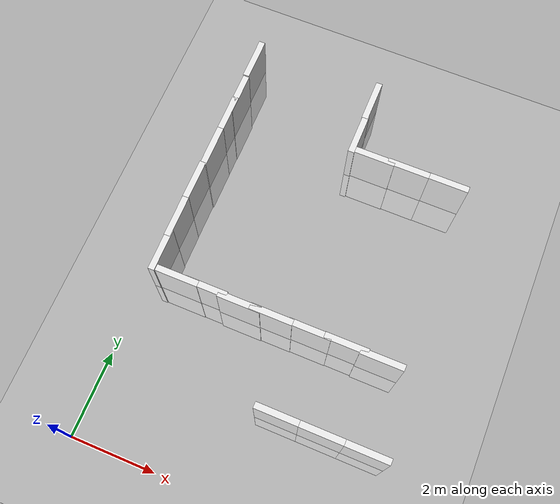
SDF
<sdf version="1.6">
 <world name="default">
  <model name="ground_plane">
   <static>1</static>
   <link name="link">
    <collision name="collision">
     <geometry><plane><normal>0 0 1</normal><size>100 100</size></plane></geometry>
     <surface><friction><ode><mu>100</mu><mu2>50</mu2></ode></friction></surface>
    </collision>
    <visual name="visual">
     <cast_shadows>0</cast_shadows>
     <geometry><plane><normal>0 0 1</normal><size>100 100</size></plane></geometry>
     <material>
      <script><uri>file://media/materials/scripts/gazebo.material</uri><name>Gazebo/Grey</name></script>
     </material>
    </visual>
   </link>
  </model>
  <model name="wall_left_04">
   <link name="Wall_10">
    <inertial>
     <mass>1</mass>
     <inertia><ixx>1</ixx><ixy>0</ixy><ixz>0</ixz><iyy>1</iyy><iyz>0</iyz><izz>1</izz></inertia>
    </inertial>
    <visual name="Wall_10_Visual_0">
     <geometry><box><size>1 0.15 2.5</size></box></geometry>
     <material>
      <script>
       <uri>model://wall/materials/scripts</uri>
       <uri>model://wall/materials/textures</uri>
       <name>wall_white</name>
      </script>
      <shader type="pixel"><normal_map>__default__</normal_map></shader>
      <ambient>1 1 1 1</ambient>
      <diffuse>1 1 1 1</diffuse>
      <specular>0 0 0 1</specular>
      <emissive>0 0 0 1</emissive>
     </material>
     <meta><layer>0</layer></meta>
    </visual>
    <collision name="Wall_10_Collision_0">
     <geometry><box><size>1 0.15 2.5</size></box></geometry>
     <surface>
      <friction>
       <ode><mu>1</mu><mu2>1</mu2><fdir1>0 0 0</fdir1><slip1>0</slip1><slip2>0</slip2></ode>
       <torsional>
        <coefficient>1</coefficient>
        <patch_radius>0</patch_radius>
        <surface_radius>0</surface_radius>
        <use_patch_radius>1</use_patch_radius>
        <ode><slip>0</slip></ode>
       </torsional>
      </friction>
      <bounce><restitution_coefficient>0</restitution_coefficient><threshold>1e+06</threshold></bounce>
      <contact>
       <collide_without_contact>0</collide_without_contact>
       <collide_without_contact_bitmask>1</collide_without_contact_bitmask>
       <collide_bitmask>1</collide_bitmask>
       <ode>
        <soft_cfm>0</soft_cfm>
        <soft_erp>0.2</soft_erp>
        <kp>1e+13</kp>
        <kd>1</kd>
        <max_vel>0.01</max_vel>
        <min_depth>0</min_depth>
       </ode>
       <bullet>
        <split_impulse>1</split_impulse>
        <split_impulse_penetration_threshold>-0.01</split_impulse_penetration_threshold>
        <soft_cfm>0</soft_cfm>
        <soft_erp>0.2</soft_erp>
        <kp>1e+13</kp>
        <kd>1</kd>
       </bullet>
      </contact>
     </surface>
    </collision>
   </link>
   <static>1</static>
   <pose>4 2 0 0 -0 0</pose>
  </model>
  <model name="wall_left_05">
   <link name="Wall_10">
    <inertial>
     <mass>1</mass>
     <inertia><ixx>1</ixx><ixy>0</ixy><ixz>0</ixz><iyy>1</iyy><iyz>0</iyz><izz>1</izz></inertia>
    </inertial>
    <visual name="Wall_10_Visual_0">
     <geometry><box><size>1 0.15 2.5</size></box></geometry>
     <material>
      <script>
       <uri>model://wall/materials/scripts</uri>
       <uri>model://wall/materials/textures</uri>
       <name>wall_white</name>
      </script>
      <shader type="pixel"><normal_map>__default__</normal_map></shader>
      <ambient>1 1 1 1</ambient>
      <diffuse>1 1 1 1</diffuse>
      <specular>0 0 0 1</specular>
      <emissive>0 0 0 1</emissive>
     </material>
     <meta><layer>0</layer></meta>
    </visual>
    <collision name="Wall_10_Collision_0">
     <geometry><box><size>1 0.15 2.5</size></box></geometry>
     <surface>
      <friction>
       <ode><mu>1</mu><mu2>1</mu2><fdir1>0 0 0</fdir1><slip1>0</slip1><slip2>0</slip2></ode>
       <torsional>
        <coefficient>1</coefficient>
        <patch_radius>0</patch_radius>
        <surface_radius>0</surface_radius>
        <use_patch_radius>1</use_patch_radius>
        <ode><slip>0</slip></ode>
       </torsional>
      </friction>
      <bounce><restitution_coefficient>0</restitution_coefficient><threshold>1e+06</threshold></bounce>
      <contact>
       <collide_without_contact>0</collide_without_contact>
       <collide_without_contact_bitmask>1</collide_without_contact_bitmask>
       <collide_bitmask>1</collide_bitmask>
       <ode>
        <soft_cfm>0</soft_cfm>
        <soft_erp>0.2</soft_erp>
        <kp>1e+13</kp>
        <kd>1</kd>
        <max_vel>0.01</max_vel>
        <min_depth>0</min_depth>
       </ode>
       <bullet>
        <split_impulse>1</split_impulse>
        <split_impulse_penetration_threshold>-0.01</split_impulse_penetration_threshold>
        <soft_cfm>0</soft_cfm>
        <soft_erp>0.2</soft_erp>
        <kp>1e+13</kp>
        <kd>1</kd>
       </bullet>
      </contact>
     </surface>
    </collision>
   </link>
   <static>1</static>
   <pose>5 2 0 0 -0 0</pose>
  </model>
  <model name="wall_left_06">
   <link name="Wall_10">
    <inertial>
     <mass>1</mass>
     <inertia><ixx>1</ixx><ixy>0</ixy><ixz>0</ixz><iyy>1</iyy><iyz>0</iyz><izz>1</izz></inertia>
    </inertial>
    <visual name="Wall_10_Visual_0">
     <geometry><box><size>1 0.15 2.5</size></box></geometry>
     <material>
      <script>
       <uri>model://wall/materials/scripts</uri>
       <uri>model://wall/materials/textures</uri>
       <name>wall_white</name>
      </script>
      <shader type="pixel"><normal_map>__default__</normal_map></shader>
      <ambient>1 1 1 1</ambient>
      <diffuse>1 1 1 1</diffuse>
      <specular>0 0 0 1</specular>
      <emissive>0 0 0 1</emissive>
     </material>
     <meta><layer>0</layer></meta>
    </visual>
    <collision name="Wall_10_Collision_0">
     <geometry><box><size>1 0.15 2.5</size></box></geometry>
     <surface>
      <friction>
       <ode><mu>1</mu><mu2>1</mu2><fdir1>0 0 0</fdir1><slip1>0</slip1><slip2>0</slip2></ode>
       <torsional>
        <coefficient>1</coefficient>
        <patch_radius>0</patch_radius>
        <surface_radius>0</surface_radius>
        <use_patch_radius>1</use_patch_radius>
        <ode><slip>0</slip></ode>
       </torsional>
      </friction>
      <bounce><restitution_coefficient>0</restitution_coefficient><threshold>1e+06</threshold></bounce>
      <contact>
       <collide_without_contact>0</collide_without_contact>
       <collide_without_contact_bitmask>1</collide_without_contact_bitmask>
       <collide_bitmask>1</collide_bitmask>
       <ode>
        <soft_cfm>0</soft_cfm>
        <soft_erp>0.2</soft_erp>
        <kp>1e+13</kp>
        <kd>1</kd>
        <max_vel>0.01</max_vel>
        <min_depth>0</min_depth>
       </ode>
       <bullet>
        <split_impulse>1</split_impulse>
        <split_impulse_penetration_threshold>-0.01</split_impulse_penetration_threshold>
        <soft_cfm>0</soft_cfm>
        <soft_erp>0.2</soft_erp>
        <kp>1e+13</kp>
        <kd>1</kd>
       </bullet>
      </contact>
     </surface>
    </collision>
   </link>
   <static>1</static>
   <pose>6 2 0 0 -0 0</pose>
  </model>
  <model name="wall_right_13_clone_clone_2">
   <link name="Wall_10">
    <inertial>
     <mass>1</mass>
     <inertia><ixx>1</ixx><ixy>0</ixy><ixz>0</ixz><iyy>1</iyy><iyz>0</iyz><izz>1</izz></inertia>
    </inertial>
    <visual name="Wall_10_Visual_0">
     <geometry><box><size>1 0.15 2.5</size></box></geometry>
     <material>
      <script>
       <uri>model://wall/materials/scripts</uri>
       <uri>model://wall/materials/textures</uri>
       <name>wall_white</name>
      </script>
      <shader type="pixel"><normal_map>__default__</normal_map></shader>
      <ambient>1 1 1 1</ambient>
      <diffuse>1 1 1 1</diffuse>
      <specular>0 0 0 1</specular>
      <emissive>0 0 0 1</emissive>
     </material>
     <meta><layer>0</layer></meta>
    </visual>
    <collision name="Wall_10_Collision_0">
     <geometry><box><size>1 0.15 2.5</size></box></geometry>
     <surface>
      <friction>
       <ode><mu>1</mu><mu2>1</mu2><fdir1>0 0 0</fdir1><slip1>0</slip1><slip2>0</slip2></ode>
       <torsional>
        <coefficient>1</coefficient>
        <patch_radius>0</patch_radius>
        <surface_radius>0</surface_radius>
        <use_patch_radius>1</use_patch_radius>
        <ode><slip>0</slip></ode>
       </torsional>
      </friction>
      <bounce><restitution_coefficient>0</restitution_coefficient><threshold>1e+06</threshold></bounce>
      <contact>
       <collide_without_contact>0</collide_without_contact>
       <collide_without_contact_bitmask>1</collide_without_contact_bitmask>
       <collide_bitmask>1</collide_bitmask>
       <ode>
        <soft_cfm>0</soft_cfm>
        <soft_erp>0.2</soft_erp>
        <kp>1e+13</kp>
        <kd>1</kd>
        <max_vel>0.01</max_vel>
        <min_depth>0</min_depth>
       </ode>
       <bullet>
        <split_impulse>1</split_impulse>
        <split_impulse_penetration_threshold>-0.01</split_impulse_penetration_threshold>
        <soft_cfm>0</soft_cfm>
        <soft_erp>0.2</soft_erp>
        <kp>1e+13</kp>
        <kd>1</kd>
       </bullet>
      </contact>
     </surface>
    </collision>
   </link>
   <static>1</static>
   <pose>5.61571 3.90145 0 0 -0 0</pose>
  </model>
  <model name="wall_right_13_clone_clone_3">
   <link name="Wall_10">
    <inertial>
     <mass>1</mass>
     <inertia><ixx>1</ixx><ixy>0</ixy><ixz>0</ixz><iyy>1</iyy><iyz>0</iyz><izz>1</izz></inertia>
    </inertial>
    <visual name="Wall_10_Visual_0">
     <geometry><box><size>1 0.15 2.5</size></box></geometry>
     <material>
      <script>
       <uri>model://wall/materials/scripts</uri>
       <uri>model://wall/materials/textures</uri>
       <name>wall_white</name>
      </script>
      <shader type="pixel"><normal_map>__default__</normal_map></shader>
      <ambient>1 1 1 1</ambient>
      <diffuse>1 1 1 1</diffuse>
      <specular>0 0 0 1</specular>
      <emissive>0 0 0 1</emissive>
     </material>
     <meta><layer>0</layer></meta>
    </visual>
    <collision name="Wall_10_Collision_0">
     <geometry><box><size>1 0.15 2.5</size></box></geometry>
     <surface>
      <friction>
       <ode><mu>1</mu><mu2>1</mu2><fdir1>0 0 0</fdir1><slip1>0</slip1><slip2>0</slip2></ode>
       <torsional>
        <coefficient>1</coefficient>
        <patch_radius>0</patch_radius>
        <surface_radius>0</surface_radius>
        <use_patch_radius>1</use_patch_radius>
        <ode><slip>0</slip></ode>
       </torsional>
      </friction>
      <bounce><restitution_coefficient>0</restitution_coefficient><threshold>1e+06</threshold></bounce>
      <contact>
       <collide_without_contact>0</collide_without_contact>
       <collide_without_contact_bitmask>1</collide_without_contact_bitmask>
       <collide_bitmask>1</collide_bitmask>
       <ode>
        <soft_cfm>0</soft_cfm>
        <soft_erp>0.2</soft_erp>
        <kp>1e+13</kp>
        <kd>1</kd>
        <max_vel>0.01</max_vel>
        <min_depth>0</min_depth>
       </ode>
       <bullet>
        <split_impulse>1</split_impulse>
        <split_impulse_penetration_threshold>-0.01</split_impulse_penetration_threshold>
        <soft_cfm>0</soft_cfm>
        <soft_erp>0.2</soft_erp>
        <kp>1e+13</kp>
        <kd>1</kd>
       </bullet>
      </contact>
     </surface>
    </collision>
   </link>
   <static>1</static>
   <pose>4.79569 3.92621 0 0 -0 0</pose>
  </model>
  <model name="wall_right_13_clone_clone_14_clone_2">
   <link name="Wall_10">
    <inertial>
     <mass>1</mass>
     <inertia><ixx>1</ixx><ixy>0</ixy><ixz>0</ixz><iyy>1</iyy><iyz>0</iyz><izz>1</izz></inertia>
    </inertial>
    <visual name="Wall_10_Visual_0">
     <geometry><box><size>1 0.15 2.5</size></box></geometry>
     <material>
      <script>
       <uri>model://wall/materials/scripts</uri>
       <uri>model://wall/materials/textures</uri>
       <name>wall_white</name>
      </script>
      <shader type="pixel"><normal_map>__default__</normal_map></shader>
      <ambient>1 1 1 1</ambient>
      <diffuse>1 1 1 1</diffuse>
      <specular>0 0 0 1</specular>
      <emissive>0 0 0 1</emissive>
     </material>
     <meta><layer>0</layer></meta>
    </visual>
    <collision name="Wall_10_Collision_0">
     <geometry><box><size>1 0.15 2.5</size></box></geometry>
     <surface>
      <friction>
       <ode><mu>1</mu><mu2>1</mu2><fdir1>0 0 0</fdir1><slip1>0</slip1><slip2>0</slip2></ode>
       <torsional>
        <coefficient>1</coefficient>
        <patch_radius>0</patch_radius>
        <surface_radius>0</surface_radius>
        <use_patch_radius>1</use_patch_radius>
        <ode><slip>0</slip></ode>
       </torsional>
      </friction>
      <bounce><restitution_coefficient>0</restitution_coefficient><threshold>1e+06</threshold></bounce>
      <contact>
       <collide_without_contact>0</collide_without_contact>
       <collide_without_contact_bitmask>1</collide_without_contact_bitmask>
       <collide_bitmask>1</collide_bitmask>
       <ode>
        <soft_cfm>0</soft_cfm>
        <soft_erp>0.2</soft_erp>
        <kp>1e+13</kp>
        <kd>1</kd>
        <max_vel>0.01</max_vel>
        <min_depth>0</min_depth>
       </ode>
       <bullet>
        <split_impulse>1</split_impulse>
        <split_impulse_penetration_threshold>-0.01</split_impulse_penetration_threshold>
        <soft_cfm>0</soft_cfm>
        <soft_erp>0.2</soft_erp>
        <kp>1e+13</kp>
        <kd>1</kd>
       </bullet>
      </contact>
     </surface>
    </collision>
   </link>
   <static>1</static>
   <pose>3.96574 3.91717 0 0 -0 0</pose>
  </model>
  <model name="wall_right_13_clone_clone_14_clone_3">
   <link name="Wall_10">
    <inertial>
     <mass>1</mass>
     <inertia><ixx>1</ixx><ixy>0</ixy><ixz>0</ixz><iyy>1</iyy><iyz>0</iyz><izz>1</izz></inertia>
    </inertial>
    <visual name="Wall_10_Visual_0">
     <geometry><box><size>1 0.15 2.5</size></box></geometry>
     <material>
      <script>
       <uri>model://wall/materials/scripts</uri>
       <uri>model://wall/materials/textures</uri>
       <name>wall_white</name>
      </script>
      <shader type="pixel"><normal_map>__default__</normal_map></shader>
      <ambient>1 1 1 1</ambient>
      <diffuse>1 1 1 1</diffuse>
      <specular>0 0 0 1</specular>
      <emissive>0 0 0 1</emissive>
     </material>
     <meta><layer>0</layer></meta>
    </visual>
    <collision name="Wall_10_Collision_0">
     <geometry><box><size>1 0.15 2.5</size></box></geometry>
     <surface>
      <friction>
       <ode><mu>1</mu><mu2>1</mu2><fdir1>0 0 0</fdir1><slip1>0</slip1><slip2>0</slip2></ode>
       <torsional>
        <coefficient>1</coefficient>
        <patch_radius>0</patch_radius>
        <surface_radius>0</surface_radius>
        <use_patch_radius>1</use_patch_radius>
        <ode><slip>0</slip></ode>
       </torsional>
      </friction>
      <bounce><restitution_coefficient>0</restitution_coefficient><threshold>1e+06</threshold></bounce>
      <contact>
       <collide_without_contact>0</collide_without_contact>
       <collide_without_contact_bitmask>1</collide_without_contact_bitmask>
       <collide_bitmask>1</collide_bitmask>
       <ode>
        <soft_cfm>0</soft_cfm>
        <soft_erp>0.2</soft_erp>
        <kp>1e+13</kp>
        <kd>1</kd>
        <max_vel>0.01</max_vel>
        <min_depth>0</min_depth>
       </ode>
       <bullet>
        <split_impulse>1</split_impulse>
        <split_impulse_penetration_threshold>-0.01</split_impulse_penetration_threshold>
        <soft_cfm>0</soft_cfm>
        <soft_erp>0.2</soft_erp>
        <kp>1e+13</kp>
        <kd>1</kd>
       </bullet>
      </contact>
     </surface>
    </collision>
   </link>
   <static>1</static>
   <pose>3.0833 3.908 0 0 -0 0</pose>
  </model>
  <model name="wall_right_13_clone_clone_14_clone_4">
   <link name="Wall_10">
    <inertial>
     <mass>1</mass>
     <inertia><ixx>1</ixx><ixy>0</ixy><ixz>0</ixz><iyy>1</iyy><iyz>0</iyz><izz>1</izz></inertia>
    </inertial>
    <visual name="Wall_10_Visual_0">
     <geometry><box><size>1 0.15 2.5</size></box></geometry>
     <material>
      <script>
       <uri>model://wall/materials/scripts</uri>
       <uri>model://wall/materials/textures</uri>
       <name>wall_white</name>
      </script>
      <shader type="pixel"><normal_map>__default__</normal_map></shader>
      <ambient>1 1 1 1</ambient>
      <diffuse>1 1 1 1</diffuse>
      <specular>0 0 0 1</specular>
      <emissive>0 0 0 1</emissive>
     </material>
     <meta><layer>0</layer></meta>
    </visual>
    <collision name="Wall_10_Collision_0">
     <geometry><box><size>1 0.15 2.5</size></box></geometry>
     <surface>
      <friction>
       <ode><mu>1</mu><mu2>1</mu2><fdir1>0 0 0</fdir1><slip1>0</slip1><slip2>0</slip2></ode>
       <torsional>
        <coefficient>1</coefficient>
        <patch_radius>0</patch_radius>
        <surface_radius>0</surface_radius>
        <use_patch_radius>1</use_patch_radius>
        <ode><slip>0</slip></ode>
       </torsional>
      </friction>
      <bounce><restitution_coefficient>0</restitution_coefficient><threshold>1e+06</threshold></bounce>
      <contact>
       <collide_without_contact>0</collide_without_contact>
       <collide_without_contact_bitmask>1</collide_without_contact_bitmask>
       <collide_bitmask>1</collide_bitmask>
       <ode>
        <soft_cfm>0</soft_cfm>
        <soft_erp>0.2</soft_erp>
        <kp>1e+13</kp>
        <kd>1</kd>
        <max_vel>0.01</max_vel>
        <min_depth>0</min_depth>
       </ode>
       <bullet>
        <split_impulse>1</split_impulse>
        <split_impulse_penetration_threshold>-0.01</split_impulse_penetration_threshold>
        <soft_cfm>0</soft_cfm>
        <soft_erp>0.2</soft_erp>
        <kp>1e+13</kp>
        <kd>1</kd>
       </bullet>
      </contact>
     </surface>
    </collision>
   </link>
   <static>1</static>
   <pose>2.33829 3.8963 0 0 -0 0</pose>
  </model>
  <model name="wall_right_13_clone_clone_14_clone_5">
   <link name="Wall_10">
    <inertial>
     <mass>1</mass>
     <inertia><ixx>1</ixx><ixy>0</ixy><ixz>0</ixz><iyy>1</iyy><iyz>0</iyz><izz>1</izz></inertia>
    </inertial>
    <visual name="Wall_10_Visual_0">
     <geometry><box><size>1 0.15 2.5</size></box></geometry>
     <material>
      <script>
       <uri>model://wall/materials/scripts</uri>
       <uri>model://wall/materials/textures</uri>
       <name>wall_white</name>
      </script>
      <shader type="pixel"><normal_map>__default__</normal_map></shader>
      <ambient>1 1 1 1</ambient>
      <diffuse>1 1 1 1</diffuse>
      <specular>0 0 0 1</specular>
      <emissive>0 0 0 1</emissive>
     </material>
     <meta><layer>0</layer></meta>
    </visual>
    <collision name="Wall_10_Collision_0">
     <geometry><box><size>1 0.15 2.5</size></box></geometry>
     <surface>
      <friction>
       <ode><mu>1</mu><mu2>1</mu2><fdir1>0 0 0</fdir1><slip1>0</slip1><slip2>0</slip2></ode>
       <torsional>
        <coefficient>1</coefficient>
        <patch_radius>0</patch_radius>
        <surface_radius>0</surface_radius>
        <use_patch_radius>1</use_patch_radius>
        <ode><slip>0</slip></ode>
       </torsional>
      </friction>
      <bounce><restitution_coefficient>0</restitution_coefficient><threshold>1e+06</threshold></bounce>
      <contact>
       <collide_without_contact>0</collide_without_contact>
       <collide_without_contact_bitmask>1</collide_without_contact_bitmask>
       <collide_bitmask>1</collide_bitmask>
       <ode>
        <soft_cfm>0</soft_cfm>
        <soft_erp>0.2</soft_erp>
        <kp>1e+13</kp>
        <kd>1</kd>
        <max_vel>0.01</max_vel>
        <min_depth>0</min_depth>
       </ode>
       <bullet>
        <split_impulse>1</split_impulse>
        <split_impulse_penetration_threshold>-0.01</split_impulse_penetration_threshold>
        <soft_cfm>0</soft_cfm>
        <soft_erp>0.2</soft_erp>
        <kp>1e+13</kp>
        <kd>1</kd>
       </bullet>
      </contact>
     </surface>
    </collision>
   </link>
   <static>1</static>
   <pose>1.53651 3.92623 0 0 -0 0</pose>
  </model>
  <model name="wall_right_13_clone_clone_14_clone_6">
   <link name="Wall_10">
    <inertial>
     <mass>1</mass>
     <inertia><ixx>1</ixx><ixy>0</ixy><ixz>0</ixz><iyy>1</iyy><iyz>0</iyz><izz>1</izz></inertia>
    </inertial>
    <visual name="Wall_10_Visual_0">
     <geometry><box><size>1 0.15 2.5</size></box></geometry>
     <material>
      <script>
       <uri>model://wall/materials/scripts</uri>
       <uri>model://wall/materials/textures</uri>
       <name>wall_white</name>
      </script>
      <shader type="pixel"><normal_map>__default__</normal_map></shader>
      <ambient>1 1 1 1</ambient>
      <diffuse>1 1 1 1</diffuse>
      <specular>0 0 0 1</specular>
      <emissive>0 0 0 1</emissive>
     </material>
     <meta><layer>0</layer></meta>
    </visual>
    <collision name="Wall_10_Collision_0">
     <geometry><box><size>1 0.15 2.5</size></box></geometry>
     <surface>
      <friction>
       <ode><mu>1</mu><mu2>1</mu2><fdir1>0 0 0</fdir1><slip1>0</slip1><slip2>0</slip2></ode>
       <torsional>
        <coefficient>1</coefficient>
        <patch_radius>0</patch_radius>
        <surface_radius>0</surface_radius>
        <use_patch_radius>1</use_patch_radius>
        <ode><slip>0</slip></ode>
       </torsional>
      </friction>
      <bounce><restitution_coefficient>0</restitution_coefficient><threshold>1e+06</threshold></bounce>
      <contact>
       <collide_without_contact>0</collide_without_contact>
       <collide_without_contact_bitmask>1</collide_without_contact_bitmask>
       <collide_bitmask>1</collide_bitmask>
       <ode>
        <soft_cfm>0</soft_cfm>
        <soft_erp>0.2</soft_erp>
        <kp>1e+13</kp>
        <kd>1</kd>
        <max_vel>0.01</max_vel>
        <min_depth>0</min_depth>
       </ode>
       <bullet>
        <split_impulse>1</split_impulse>
        <split_impulse_penetration_threshold>-0.01</split_impulse_penetration_threshold>
        <soft_cfm>0</soft_cfm>
        <soft_erp>0.2</soft_erp>
        <kp>1e+13</kp>
        <kd>1</kd>
       </bullet>
      </contact>
     </surface>
    </collision>
   </link>
   <static>1</static>
   <pose>0.859182 3.91915 0 0 -0 0</pose>
  </model>
  <model name="wall_left_07_clone">
   <link name="Wall_10">
    <inertial>
     <mass>1</mass>
     <inertia><ixx>1</ixx><ixy>0</ixy><ixz>0</ixz><iyy>1</iyy><iyz>0</iyz><izz>1</izz></inertia>
    </inertial>
    <visual name="Wall_10_Visual_0">
     <geometry><box><size>1 0.15 2.5</size></box></geometry>
     <material>
      <script>
       <uri>model://wall/materials/scripts</uri>
       <uri>model://wall/materials/textures</uri>
       <name>wall_white</name>
      </script>
      <shader type="pixel"><normal_map>__default__</normal_map></shader>
      <ambient>1 1 1 1</ambient>
      <diffuse>1 1 1 1</diffuse>
      <specular>0 0 0 1</specular>
      <emissive>0 0 0 1</emissive>
     </material>
     <meta><layer>0</layer></meta>
    </visual>
    <collision name="Wall_10_Collision_0">
     <geometry><box><size>1 0.15 2.5</size></box></geometry>
     <surface>
      <friction>
       <ode><mu>1</mu><mu2>1</mu2><fdir1>0 0 0</fdir1><slip1>0</slip1><slip2>0</slip2></ode>
       <torsional>
        <coefficient>1</coefficient>
        <patch_radius>0</patch_radius>
        <surface_radius>0</surface_radius>
        <use_patch_radius>1</use_patch_radius>
        <ode><slip>0</slip></ode>
       </torsional>
      </friction>
      <bounce><restitution_coefficient>0</restitution_coefficient><threshold>1e+06</threshold></bounce>
      <contact>
       <collide_without_contact>0</collide_without_contact>
       <collide_without_contact_bitmask>1</collide_without_contact_bitmask>
       <collide_bitmask>1</collide_bitmask>
       <ode>
        <soft_cfm>0</soft_cfm>
        <soft_erp>0.2</soft_erp>
        <kp>1e+13</kp>
        <kd>1</kd>
        <max_vel>0.01</max_vel>
        <min_depth>0</min_depth>
       </ode>
       <bullet>
        <split_impulse>1</split_impulse>
        <split_impulse_penetration_threshold>-0.01</split_impulse_penetration_threshold>
        <soft_cfm>0</soft_cfm>
        <soft_erp>0.2</soft_erp>
        <kp>1e+13</kp>
        <kd>1</kd>
       </bullet>
      </contact>
     </surface>
    </collision>
   </link>
   <static>1</static>
   <pose>0.274743 4.33014 0 0 -0 1.57</pose>
  </model>
  <model name="wall_left_07_clone_0">
   <link name="Wall_10">
    <inertial>
     <mass>1</mass>
     <inertia><ixx>1</ixx><ixy>0</ixy><ixz>0</ixz><iyy>1</iyy><iyz>0</iyz><izz>1</izz></inertia>
    </inertial>
    <visual name="Wall_10_Visual_0">
     <geometry><box><size>1 0.15 2.5</size></box></geometry>
     <material>
      <script>
       <uri>model://wall/materials/scripts</uri>
       <uri>model://wall/materials/textures</uri>
       <name>wall_white</name>
      </script>
      <shader type="pixel"><normal_map>__default__</normal_map></shader>
      <ambient>1 1 1 1</ambient>
      <diffuse>1 1 1 1</diffuse>
      <specular>0 0 0 1</specular>
      <emissive>0 0 0 1</emissive>
     </material>
     <meta><layer>0</layer></meta>
    </visual>
    <collision name="Wall_10_Collision_0">
     <geometry><box><size>1 0.15 2.5</size></box></geometry>
     <surface>
      <friction>
       <ode><mu>1</mu><mu2>1</mu2><fdir1>0 0 0</fdir1><slip1>0</slip1><slip2>0</slip2></ode>
       <torsional>
        <coefficient>1</coefficient>
        <patch_radius>0</patch_radius>
        <surface_radius>0</surface_radius>
        <use_patch_radius>1</use_patch_radius>
        <ode><slip>0</slip></ode>
       </torsional>
      </friction>
      <bounce><restitution_coefficient>0</restitution_coefficient><threshold>1e+06</threshold></bounce>
      <contact>
       <collide_without_contact>0</collide_without_contact>
       <collide_without_contact_bitmask>1</collide_without_contact_bitmask>
       <collide_bitmask>1</collide_bitmask>
       <ode>
        <soft_cfm>0</soft_cfm>
        <soft_erp>0.2</soft_erp>
        <kp>1e+13</kp>
        <kd>1</kd>
        <max_vel>0.01</max_vel>
        <min_depth>0</min_depth>
       </ode>
       <bullet>
        <split_impulse>1</split_impulse>
        <split_impulse_penetration_threshold>-0.01</split_impulse_penetration_threshold>
        <soft_cfm>0</soft_cfm>
        <soft_erp>0.2</soft_erp>
        <kp>1e+13</kp>
        <kd>1</kd>
       </bullet>
      </contact>
     </surface>
    </collision>
   </link>
   <static>1</static>
   <pose>0.262743 5.1801 0 0 -0 1.57</pose>
  </model>
  <model name="wall_left_07_clone_1">
   <link name="Wall_10">
    <inertial>
     <mass>1</mass>
     <inertia><ixx>1</ixx><ixy>0</ixy><ixz>0</ixz><iyy>1</iyy><iyz>0</iyz><izz>1</izz></inertia>
    </inertial>
    <visual name="Wall_10_Visual_0">
     <geometry><box><size>1 0.15 2.5</size></box></geometry>
     <material>
      <script>
       <uri>model://wall/materials/scripts</uri>
       <uri>model://wall/materials/textures</uri>
       <name>wall_white</name>
      </script>
      <shader type="pixel"><normal_map>__default__</normal_map></shader>
      <ambient>1 1 1 1</ambient>
      <diffuse>1 1 1 1</diffuse>
      <specular>0 0 0 1</specular>
      <emissive>0 0 0 1</emissive>
     </material>
     <meta><layer>0</layer></meta>
    </visual>
    <collision name="Wall_10_Collision_0">
     <geometry><box><size>1 0.15 2.5</size></box></geometry>
     <surface>
      <friction>
       <ode><mu>1</mu><mu2>1</mu2><fdir1>0 0 0</fdir1><slip1>0</slip1><slip2>0</slip2></ode>
       <torsional>
        <coefficient>1</coefficient>
        <patch_radius>0</patch_radius>
        <surface_radius>0</surface_radius>
        <use_patch_radius>1</use_patch_radius>
        <ode><slip>0</slip></ode>
       </torsional>
      </friction>
      <bounce><restitution_coefficient>0</restitution_coefficient><threshold>1e+06</threshold></bounce>
      <contact>
       <collide_without_contact>0</collide_without_contact>
       <collide_without_contact_bitmask>1</collide_without_contact_bitmask>
       <collide_bitmask>1</collide_bitmask>
       <ode>
        <soft_cfm>0</soft_cfm>
        <soft_erp>0.2</soft_erp>
        <kp>1e+13</kp>
        <kd>1</kd>
        <max_vel>0.01</max_vel>
        <min_depth>0</min_depth>
       </ode>
       <bullet>
        <split_impulse>1</split_impulse>
        <split_impulse_penetration_threshold>-0.01</split_impulse_penetration_threshold>
        <soft_cfm>0</soft_cfm>
        <soft_erp>0.2</soft_erp>
        <kp>1e+13</kp>
        <kd>1</kd>
       </bullet>
      </contact>
     </surface>
    </collision>
   </link>
   <static>1</static>
   <pose>0.258175 6.12071 0 0 -0 1.57</pose>
  </model>
  <model name="wall_left_07_clone_2">
   <link name="Wall_10">
    <inertial>
     <mass>1</mass>
     <inertia><ixx>1</ixx><ixy>0</ixy><ixz>0</ixz><iyy>1</iyy><iyz>0</iyz><izz>1</izz></inertia>
    </inertial>
    <visual name="Wall_10_Visual_0">
     <geometry><box><size>1 0.15 2.5</size></box></geometry>
     <material>
      <script>
       <uri>model://wall/materials/scripts</uri>
       <uri>model://wall/materials/textures</uri>
       <name>wall_white</name>
      </script>
      <shader type="pixel"><normal_map>__default__</normal_map></shader>
      <ambient>1 1 1 1</ambient>
      <diffuse>1 1 1 1</diffuse>
      <specular>0 0 0 1</specular>
      <emissive>0 0 0 1</emissive>
     </material>
     <meta><layer>0</layer></meta>
    </visual>
    <collision name="Wall_10_Collision_0">
     <geometry><box><size>1 0.15 2.5</size></box></geometry>
     <surface>
      <friction>
       <ode><mu>1</mu><mu2>1</mu2><fdir1>0 0 0</fdir1><slip1>0</slip1><slip2>0</slip2></ode>
       <torsional>
        <coefficient>1</coefficient>
        <patch_radius>0</patch_radius>
        <surface_radius>0</surface_radius>
        <use_patch_radius>1</use_patch_radius>
        <ode><slip>0</slip></ode>
       </torsional>
      </friction>
      <bounce><restitution_coefficient>0</restitution_coefficient><threshold>1e+06</threshold></bounce>
      <contact>
       <collide_without_contact>0</collide_without_contact>
       <collide_without_contact_bitmask>1</collide_without_contact_bitmask>
       <collide_bitmask>1</collide_bitmask>
       <ode>
        <soft_cfm>0</soft_cfm>
        <soft_erp>0.2</soft_erp>
        <kp>1e+13</kp>
        <kd>1</kd>
        <max_vel>0.01</max_vel>
        <min_depth>0</min_depth>
       </ode>
       <bullet>
        <split_impulse>1</split_impulse>
        <split_impulse_penetration_threshold>-0.01</split_impulse_penetration_threshold>
        <soft_cfm>0</soft_cfm>
        <soft_erp>0.2</soft_erp>
        <kp>1e+13</kp>
        <kd>1</kd>
       </bullet>
      </contact>
     </surface>
    </collision>
   </link>
   <static>1</static>
   <pose>0.278521 7.07563 0 0 -0 1.57</pose>
  </model>
  <model name="wall_left_07_clone_3">
   <link name="Wall_10">
    <inertial>
     <mass>1</mass>
     <inertia><ixx>1</ixx><ixy>0</ixy><ixz>0</ixz><iyy>1</iyy><iyz>0</iyz><izz>1</izz></inertia>
    </inertial>
    <visual name="Wall_10_Visual_0">
     <geometry><box><size>1 0.15 2.5</size></box></geometry>
     <material>
      <script>
       <uri>model://wall/materials/scripts</uri>
       <uri>model://wall/materials/textures</uri>
       <name>wall_white</name>
      </script>
      <shader type="pixel"><normal_map>__default__</normal_map></shader>
      <ambient>1 1 1 1</ambient>
      <diffuse>1 1 1 1</diffuse>
      <specular>0 0 0 1</specular>
      <emissive>0 0 0 1</emissive>
     </material>
     <meta><layer>0</layer></meta>
    </visual>
    <collision name="Wall_10_Collision_0">
     <geometry><box><size>1 0.15 2.5</size></box></geometry>
     <surface>
      <friction>
       <ode><mu>1</mu><mu2>1</mu2><fdir1>0 0 0</fdir1><slip1>0</slip1><slip2>0</slip2></ode>
       <torsional>
        <coefficient>1</coefficient>
        <patch_radius>0</patch_radius>
        <surface_radius>0</surface_radius>
        <use_patch_radius>1</use_patch_radius>
        <ode><slip>0</slip></ode>
       </torsional>
      </friction>
      <bounce><restitution_coefficient>0</restitution_coefficient><threshold>1e+06</threshold></bounce>
      <contact>
       <collide_without_contact>0</collide_without_contact>
       <collide_without_contact_bitmask>1</collide_without_contact_bitmask>
       <collide_bitmask>1</collide_bitmask>
       <ode>
        <soft_cfm>0</soft_cfm>
        <soft_erp>0.2</soft_erp>
        <kp>1e+13</kp>
        <kd>1</kd>
        <max_vel>0.01</max_vel>
        <min_depth>0</min_depth>
       </ode>
       <bullet>
        <split_impulse>1</split_impulse>
        <split_impulse_penetration_threshold>-0.01</split_impulse_penetration_threshold>
        <soft_cfm>0</soft_cfm>
        <soft_erp>0.2</soft_erp>
        <kp>1e+13</kp>
        <kd>1</kd>
       </bullet>
      </contact>
     </surface>
    </collision>
   </link>
   <static>1</static>
   <pose>0.277857 7.952 0 0 -0 1.57</pose>
  </model>
  <model name="wall_right_13_clone_clone_9_clone_7">
   <link name="Wall_10">
    <inertial>
     <mass>1</mass>
     <inertia><ixx>1</ixx><ixy>0</ixy><ixz>0</ixz><iyy>1</iyy><iyz>0</iyz><izz>1</izz></inertia>
    </inertial>
    <visual name="Wall_10_Visual_0">
     <geometry><box><size>1 0.15 2.5</size></box></geometry>
     <material>
      <script>
       <uri>model://wall/materials/scripts</uri>
       <uri>model://wall/materials/textures</uri>
       <name>wall_white</name>
      </script>
      <shader type="pixel"><normal_map>__default__</normal_map></shader>
      <ambient>1 1 1 1</ambient>
      <diffuse>1 1 1 1</diffuse>
      <specular>0 0 0 1</specular>
      <emissive>0 0 0 1</emissive>
     </material>
     <meta><layer>0</layer></meta>
    </visual>
    <collision name="Wall_10_Collision_0">
     <geometry><box><size>1 0.15 2.5</size></box></geometry>
     <surface>
      <friction>
       <ode><mu>1</mu><mu2>1</mu2><fdir1>0 0 0</fdir1><slip1>0</slip1><slip2>0</slip2></ode>
       <torsional>
        <coefficient>1</coefficient>
        <patch_radius>0</patch_radius>
        <surface_radius>0</surface_radius>
        <use_patch_radius>1</use_patch_radius>
        <ode><slip>0</slip></ode>
       </torsional>
      </friction>
      <bounce><restitution_coefficient>0</restitution_coefficient><threshold>1e+06</threshold></bounce>
      <contact>
       <collide_without_contact>0</collide_without_contact>
       <collide_without_contact_bitmask>1</collide_without_contact_bitmask>
       <collide_bitmask>1</collide_bitmask>
       <ode>
        <soft_cfm>0</soft_cfm>
        <soft_erp>0.2</soft_erp>
        <kp>1e+13</kp>
        <kd>1</kd>
        <max_vel>0.01</max_vel>
        <min_depth>0</min_depth>
       </ode>
       <bullet>
        <split_impulse>1</split_impulse>
        <split_impulse_penetration_threshold>-0.01</split_impulse_penetration_threshold>
        <soft_cfm>0</soft_cfm>
        <soft_erp>0.2</soft_erp>
        <kp>1e+13</kp>
        <kd>1</kd>
       </bullet>
      </contact>
     </surface>
    </collision>
   </link>
   <static>1</static>
   <pose>5.58364 8.28159 0 0 -0 0</pose>
  </model>
  <model name="wall_right_13_clone_clone_9_clone_8">
   <link name="Wall_10">
    <inertial>
     <mass>1</mass>
     <inertia><ixx>1</ixx><ixy>0</ixy><ixz>0</ixz><iyy>1</iyy><iyz>0</iyz><izz>1</izz></inertia>
    </inertial>
    <visual name="Wall_10_Visual_0">
     <geometry><box><size>1 0.15 2.5</size></box></geometry>
     <material>
      <script>
       <uri>model://wall/materials/scripts</uri>
       <uri>model://wall/materials/textures</uri>
       <name>wall_white</name>
      </script>
      <shader type="pixel"><normal_map>__default__</normal_map></shader>
      <ambient>1 1 1 1</ambient>
      <diffuse>1 1 1 1</diffuse>
      <specular>0 0 0 1</specular>
      <emissive>0 0 0 1</emissive>
     </material>
     <meta><layer>0</layer></meta>
    </visual>
    <collision name="Wall_10_Collision_0">
     <geometry><box><size>1 0.15 2.5</size></box></geometry>
     <surface>
      <friction>
       <ode><mu>1</mu><mu2>1</mu2><fdir1>0 0 0</fdir1><slip1>0</slip1><slip2>0</slip2></ode>
       <torsional>
        <coefficient>1</coefficient>
        <patch_radius>0</patch_radius>
        <surface_radius>0</surface_radius>
        <use_patch_radius>1</use_patch_radius>
        <ode><slip>0</slip></ode>
       </torsional>
      </friction>
      <bounce><restitution_coefficient>0</restitution_coefficient><threshold>1e+06</threshold></bounce>
      <contact>
       <collide_without_contact>0</collide_without_contact>
       <collide_without_contact_bitmask>1</collide_without_contact_bitmask>
       <collide_bitmask>1</collide_bitmask>
       <ode>
        <soft_cfm>0</soft_cfm>
        <soft_erp>0.2</soft_erp>
        <kp>1e+13</kp>
        <kd>1</kd>
        <max_vel>0.01</max_vel>
        <min_depth>0</min_depth>
       </ode>
       <bullet>
        <split_impulse>1</split_impulse>
        <split_impulse_penetration_threshold>-0.01</split_impulse_penetration_threshold>
        <soft_cfm>0</soft_cfm>
        <soft_erp>0.2</soft_erp>
        <kp>1e+13</kp>
        <kd>1</kd>
       </bullet>
      </contact>
     </surface>
    </collision>
   </link>
   <static>1</static>
   <pose>4.65215 8.27432 0 0 -0 0</pose>
  </model>
  <model name="wall_right_13_clone_clone_9_clone_9">
   <link name="Wall_10">
    <inertial>
     <mass>1</mass>
     <inertia><ixx>1</ixx><ixy>0</ixy><ixz>0</ixz><iyy>1</iyy><iyz>0</iyz><izz>1</izz></inertia>
    </inertial>
    <visual name="Wall_10_Visual_0">
     <geometry><box><size>1 0.15 2.5</size></box></geometry>
     <material>
      <script>
       <uri>model://wall/materials/scripts</uri>
       <uri>model://wall/materials/textures</uri>
       <name>wall_white</name>
      </script>
      <shader type="pixel"><normal_map>__default__</normal_map></shader>
      <ambient>1 1 1 1</ambient>
      <diffuse>1 1 1 1</diffuse>
      <specular>0 0 0 1</specular>
      <emissive>0 0 0 1</emissive>
     </material>
     <meta><layer>0</layer></meta>
    </visual>
    <collision name="Wall_10_Collision_0">
     <geometry><box><size>1 0.15 2.5</size></box></geometry>
     <surface>
      <friction>
       <ode><mu>1</mu><mu2>1</mu2><fdir1>0 0 0</fdir1><slip1>0</slip1><slip2>0</slip2></ode>
       <torsional>
        <coefficient>1</coefficient>
        <patch_radius>0</patch_radius>
        <surface_radius>0</surface_radius>
        <use_patch_radius>1</use_patch_radius>
        <ode><slip>0</slip></ode>
       </torsional>
      </friction>
      <bounce><restitution_coefficient>0</restitution_coefficient><threshold>1e+06</threshold></bounce>
      <contact>
       <collide_without_contact>0</collide_without_contact>
       <collide_without_contact_bitmask>1</collide_without_contact_bitmask>
       <collide_bitmask>1</collide_bitmask>
       <ode>
        <soft_cfm>0</soft_cfm>
        <soft_erp>0.2</soft_erp>
        <kp>1e+13</kp>
        <kd>1</kd>
        <max_vel>0.01</max_vel>
        <min_depth>0</min_depth>
       </ode>
       <bullet>
        <split_impulse>1</split_impulse>
        <split_impulse_penetration_threshold>-0.01</split_impulse_penetration_threshold>
        <soft_cfm>0</soft_cfm>
        <soft_erp>0.2</soft_erp>
        <kp>1e+13</kp>
        <kd>1</kd>
       </bullet>
      </contact>
     </surface>
    </collision>
   </link>
   <static>1</static>
   <pose>3.82208 8.26026 0 0 -0 0</pose>
  </model>
  <model name="wall_left_07_clone_3_clone">
   <link name="Wall_10">
    <inertial>
     <mass>1</mass>
     <inertia><ixx>1</ixx><ixy>0</ixy><ixz>0</ixz><iyy>1</iyy><iyz>0</iyz><izz>1</izz></inertia>
    </inertial>
    <visual name="Wall_10_Visual_0">
     <geometry><box><size>1 0.15 2.5</size></box></geometry>
     <material>
      <script>
       <uri>model://wall/materials/scripts</uri>
       <uri>model://wall/materials/textures</uri>
       <name>wall_white</name>
      </script>
      <shader type="pixel"><normal_map>__default__</normal_map></shader>
      <ambient>1 1 1 1</ambient>
      <diffuse>1 1 1 1</diffuse>
      <specular>0 0 0 1</specular>
      <emissive>0 0 0 1</emissive>
     </material>
     <meta><layer>0</layer></meta>
    </visual>
    <collision name="Wall_10_Collision_0">
     <geometry><box><size>1 0.15 2.5</size></box></geometry>
     <surface>
      <friction>
       <ode><mu>1</mu><mu2>1</mu2><fdir1>0 0 0</fdir1><slip1>0</slip1><slip2>0</slip2></ode>
       <torsional>
        <coefficient>1</coefficient>
        <patch_radius>0</patch_radius>
        <surface_radius>0</surface_radius>
        <use_patch_radius>1</use_patch_radius>
        <ode><slip>0</slip></ode>
       </torsional>
      </friction>
      <bounce><restitution_coefficient>0</restitution_coefficient><threshold>1e+06</threshold></bounce>
      <contact>
       <collide_without_contact>0</collide_without_contact>
       <collide_without_contact_bitmask>1</collide_without_contact_bitmask>
       <collide_bitmask>1</collide_bitmask>
       <ode>
        <soft_cfm>0</soft_cfm>
        <soft_erp>0.2</soft_erp>
        <kp>1e+13</kp>
        <kd>1</kd>
        <max_vel>0.01</max_vel>
        <min_depth>0</min_depth>
       </ode>
       <bullet>
        <split_impulse>1</split_impulse>
        <split_impulse_penetration_threshold>-0.01</split_impulse_penetration_threshold>
        <soft_cfm>0</soft_cfm>
        <soft_erp>0.2</soft_erp>
        <kp>1e+13</kp>
        <kd>1</kd>
       </bullet>
      </contact>
     </surface>
    </collision>
   </link>
   <static>1</static>
   <pose>3.2887 8.65928 0 0 -0 1.57</pose>
  </model>
  <model name="wall_left_07_clone_3_clone_0">
   <link name="Wall_10">
    <inertial>
     <mass>1</mass>
     <inertia><ixx>1</ixx><ixy>0</ixy><ixz>0</ixz><iyy>1</iyy><iyz>0</iyz><izz>1</izz></inertia>
    </inertial>
    <visual name="Wall_10_Visual_0">
     <geometry><box><size>1 0.15 2.5</size></box></geometry>
     <material>
      <script>
       <uri>model://wall/materials/scripts</uri>
       <uri>model://wall/materials/textures</uri>
       <name>wall_white</name>
      </script>
      <shader type="pixel"><normal_map>__default__</normal_map></shader>
      <ambient>1 1 1 1</ambient>
      <diffuse>1 1 1 1</diffuse>
      <specular>0 0 0 1</specular>
      <emissive>0 0 0 1</emissive>
     </material>
     <meta><layer>0</layer></meta>
    </visual>
    <collision name="Wall_10_Collision_0">
     <geometry><box><size>1 0.15 2.5</size></box></geometry>
     <surface>
      <friction>
       <ode><mu>1</mu><mu2>1</mu2><fdir1>0 0 0</fdir1><slip1>0</slip1><slip2>0</slip2></ode>
       <torsional>
        <coefficient>1</coefficient>
        <patch_radius>0</patch_radius>
        <surface_radius>0</surface_radius>
        <use_patch_radius>1</use_patch_radius>
        <ode><slip>0</slip></ode>
       </torsional>
      </friction>
      <bounce><restitution_coefficient>0</restitution_coefficient><threshold>1e+06</threshold></bounce>
      <contact>
       <collide_without_contact>0</collide_without_contact>
       <collide_without_contact_bitmask>1</collide_without_contact_bitmask>
       <collide_bitmask>1</collide_bitmask>
       <ode>
        <soft_cfm>0</soft_cfm>
        <soft_erp>0.2</soft_erp>
        <kp>1e+13</kp>
        <kd>1</kd>
        <max_vel>0.01</max_vel>
        <min_depth>0</min_depth>
       </ode>
       <bullet>
        <split_impulse>1</split_impulse>
        <split_impulse_penetration_threshold>-0.01</split_impulse_penetration_threshold>
        <soft_cfm>0</soft_cfm>
        <soft_erp>0.2</soft_erp>
        <kp>1e+13</kp>
        <kd>1</kd>
       </bullet>
      </contact>
     </surface>
    </collision>
   </link>
   <static>1</static>
   <pose>0.287232 8.56738 0 0 -0 1.57</pose>
  </model>
  <model name="wall_left_07_clone_3_clone_1">
   <link name="Wall_10">
    <inertial>
     <mass>1</mass>
     <inertia><ixx>1</ixx><ixy>0</ixy><ixz>0</ixz><iyy>1</iyy><iyz>0</iyz><izz>1</izz></inertia>
    </inertial>
    <visual name="Wall_10_Visual_0">
     <geometry><box><size>1 0.15 2.5</size></box></geometry>
     <material>
      <script>
       <uri>model://wall/materials/scripts</uri>
       <uri>model://wall/materials/textures</uri>
       <name>wall_white</name>
      </script>
      <shader type="pixel"><normal_map>__default__</normal_map></shader>
      <ambient>1 1 1 1</ambient>
      <diffuse>1 1 1 1</diffuse>
      <specular>0 0 0 1</specular>
      <emissive>0 0 0 1</emissive>
     </material>
     <meta><layer>0</layer></meta>
    </visual>
    <collision name="Wall_10_Collision_0">
     <geometry><box><size>1 0.15 2.5</size></box></geometry>
     <surface>
      <friction>
       <ode><mu>1</mu><mu2>1</mu2><fdir1>0 0 0</fdir1><slip1>0</slip1><slip2>0</slip2></ode>
       <torsional>
        <coefficient>1</coefficient>
        <patch_radius>0</patch_radius>
        <surface_radius>0</surface_radius>
        <use_patch_radius>1</use_patch_radius>
        <ode><slip>0</slip></ode>
       </torsional>
      </friction>
      <bounce><restitution_coefficient>0</restitution_coefficient><threshold>1e+06</threshold></bounce>
      <contact>
       <collide_without_contact>0</collide_without_contact>
       <collide_without_contact_bitmask>1</collide_without_contact_bitmask>
       <collide_bitmask>1</collide_bitmask>
       <ode>
        <soft_cfm>0</soft_cfm>
        <soft_erp>0.2</soft_erp>
        <kp>1e+13</kp>
        <kd>1</kd>
        <max_vel>0.01</max_vel>
        <min_depth>0</min_depth>
       </ode>
       <bullet>
        <split_impulse>1</split_impulse>
        <split_impulse_penetration_threshold>-0.01</split_impulse_penetration_threshold>
        <soft_cfm>0</soft_cfm>
        <soft_erp>0.2</soft_erp>
        <kp>1e+13</kp>
        <kd>1</kd>
       </bullet>
      </contact>
     </surface>
    </collision>
   </link>
   <static>1</static>
   <pose>3.2753 9.59984 0 0 -0 1.57</pose>
  </model>
  <model name="wall_left_07_clone_3_clone_2">
   <link name="Wall_10">
    <inertial>
     <mass>1</mass>
     <inertia><ixx>1</ixx><ixy>0</ixy><ixz>0</ixz><iyy>1</iyy><iyz>0</iyz><izz>1</izz></inertia>
    </inertial>
    <visual name="Wall_10_Visual_0">
     <geometry><box><size>1 0.15 2.5</size></box></geometry>
     <material>
      <script>
       <uri>model://wall/materials/scripts</uri>
       <uri>model://wall/materials/textures</uri>
       <name>wall_white</name>
      </script>
      <shader type="pixel"><normal_map>__default__</normal_map></shader>
      <ambient>1 1 1 1</ambient>
      <diffuse>1 1 1 1</diffuse>
      <specular>0 0 0 1</specular>
      <emissive>0 0 0 1</emissive>
     </material>
     <meta><layer>0</layer></meta>
    </visual>
    <collision name="Wall_10_Collision_0">
     <geometry><box><size>1 0.15 2.5</size></box></geometry>
     <surface>
      <friction>
       <ode><mu>1</mu><mu2>1</mu2><fdir1>0 0 0</fdir1><slip1>0</slip1><slip2>0</slip2></ode>
       <torsional>
        <coefficient>1</coefficient>
        <patch_radius>0</patch_radius>
        <surface_radius>0</surface_radius>
        <use_patch_radius>1</use_patch_radius>
        <ode><slip>0</slip></ode>
       </torsional>
      </friction>
      <bounce><restitution_coefficient>0</restitution_coefficient><threshold>1e+06</threshold></bounce>
      <contact>
       <collide_without_contact>0</collide_without_contact>
       <collide_without_contact_bitmask>1</collide_without_contact_bitmask>
       <collide_bitmask>1</collide_bitmask>
       <ode>
        <soft_cfm>0</soft_cfm>
        <soft_erp>0.2</soft_erp>
        <kp>1e+13</kp>
        <kd>1</kd>
        <max_vel>0.01</max_vel>
        <min_depth>0</min_depth>
       </ode>
       <bullet>
        <split_impulse>1</split_impulse>
        <split_impulse_penetration_threshold>-0.01</split_impulse_penetration_threshold>
        <soft_cfm>0</soft_cfm>
        <soft_erp>0.2</soft_erp>
        <kp>1e+13</kp>
        <kd>1</kd>
       </bullet>
      </contact>
     </surface>
    </collision>
   </link>
   <static>1</static>
   <pose>0.267025 9.59027 0 0 -0 1.57</pose>
  </model>
 </world>
</sdf>
